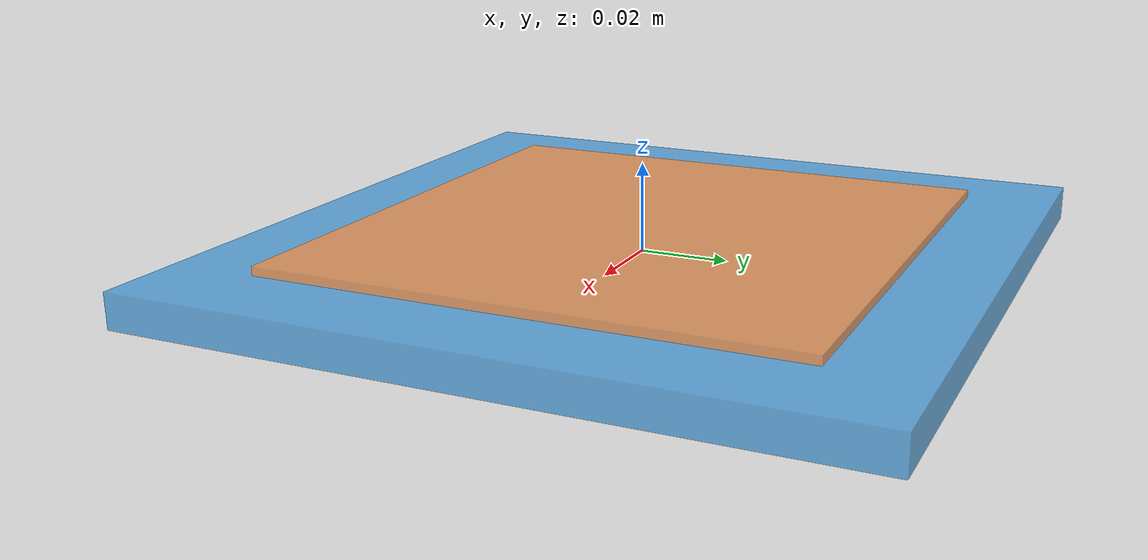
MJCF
<mujoco model="boxbox accuracy case 3">
  <option gravity="0 0 0" boxbox="new"/>

  <worldbody>
    <body name="boxA">
      <freejoint/>
      <geom type="box" size="0.08 0.08 0.004" rgba=".2 .6 .9 .7"/>
    </body>
    <body name="boxB">
      <freejoint/>
      <geom type="box" size="0.06 0.06 0.006" rgba=".9 .5 .2 .7"/>
    </body>
  </worldbody>

  <keyframe>
    <key name="failure" qpos="0 0 0  0.87836244026028532 -0.36477962723487728 0.22276106859104561 -0.21399241438554814  0.11780650774183882 0.017930222776281691 -0.11507185266968654  -0.091684432738683333 -0.43822202791627313 0.24532003802230173 -0.85986830269935621"/>
  </keyframe>
</mujoco>
